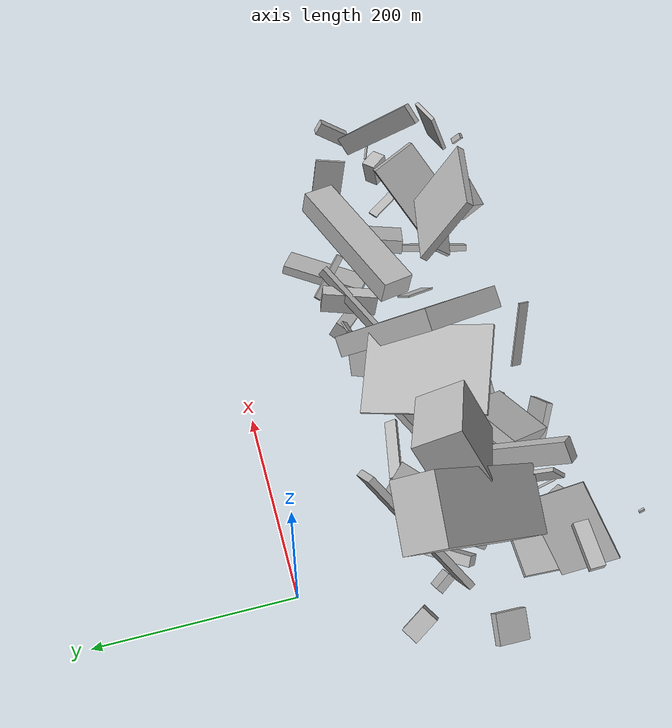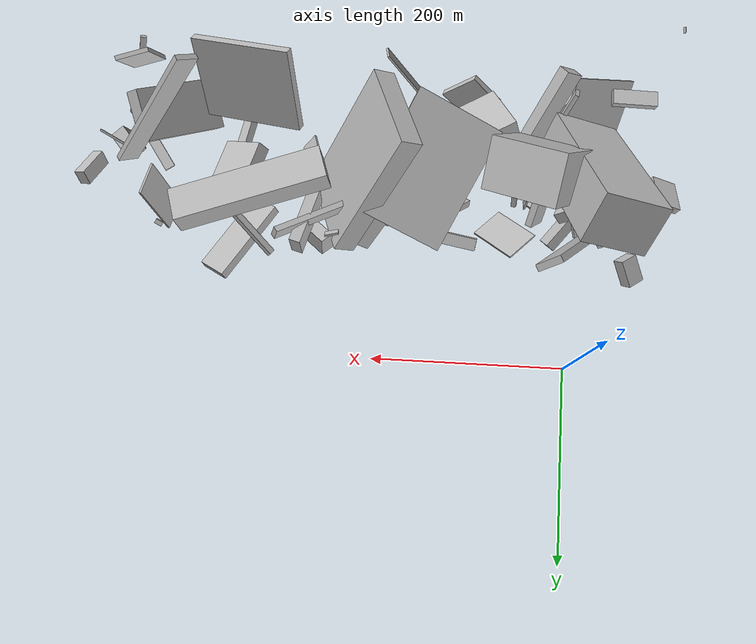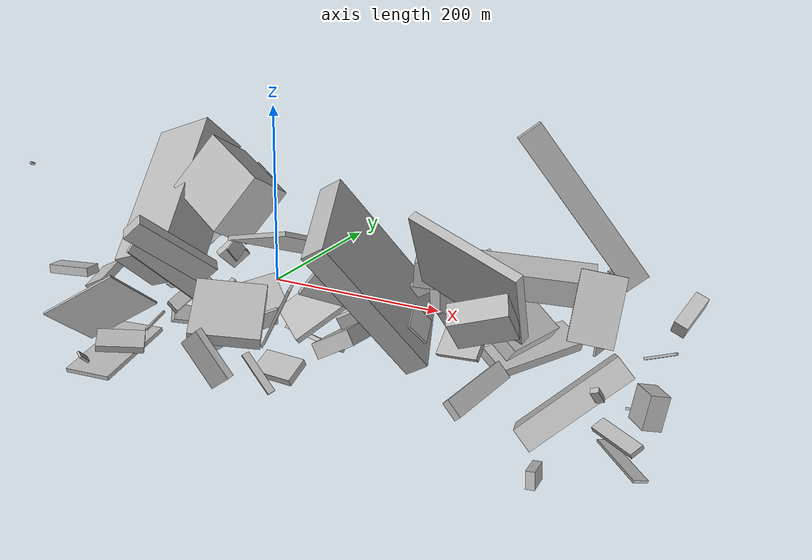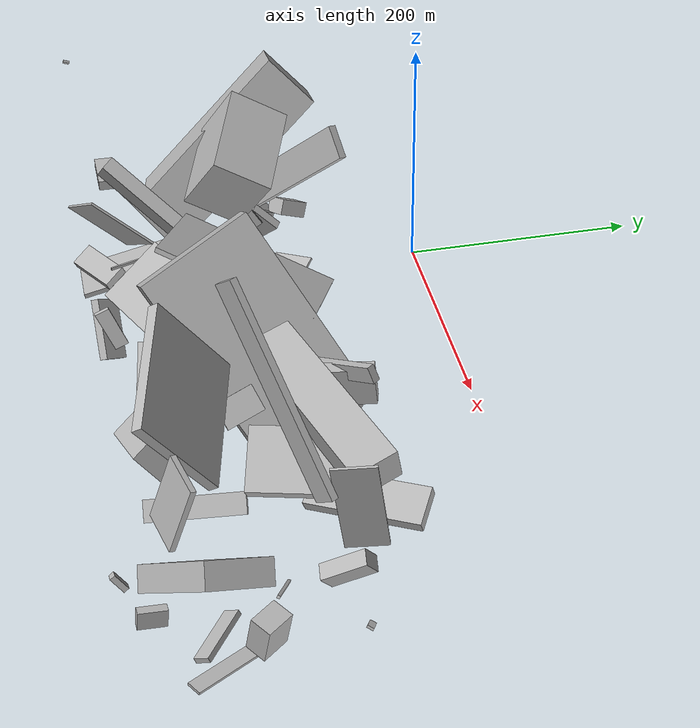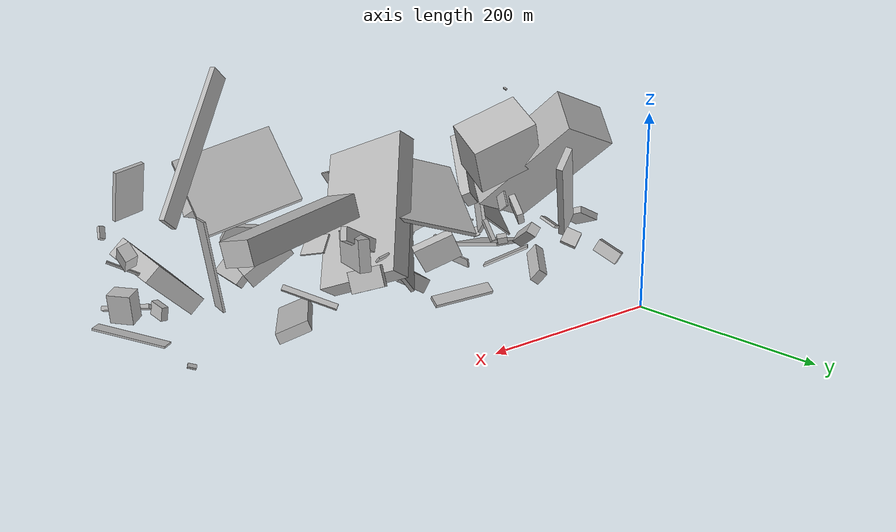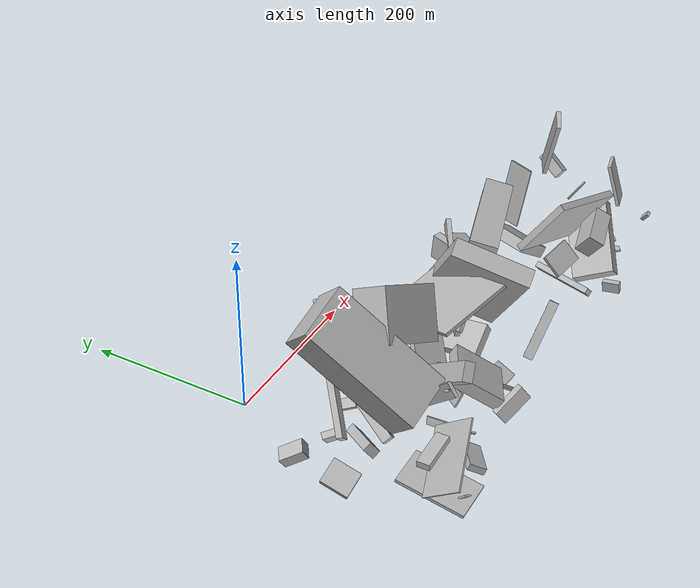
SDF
<sdf version="1.6">
 <world name="default">
  <model name="building_9">
   <static>0</static>
   <pose>405.140047572476 -216.71154803683282 47.58208503096767 1.086932046682388 -0.6461641095841756 0.5884371205439956</pose>
   <link name="link">
    <gravity>0</gravity>
    <pose>0 0 25.5 0 0 0</pose>
    <collision name="collision"><geometry><box><size>91 19 51</size></box></geometry></collision>
    <visual name="visual">
     <cast_shadows>0</cast_shadows>
     <geometry><box><size>91 19 51</size></box></geometry>
     <material>
      <script>
       <uri>model://HANNAS_wall/materials/scripts</uri>
       <uri>model://HANNAS_wall/materials/textures</uri>
       <name>vrc/HANNAS_wall</name>
      </script>
     </material>
    </visual>
   </link>
  </model>
  <model name="building_13">
   <static>0</static>
   <pose>122.49739351463079 -171.38835465769185 32.34084828139092 0.8966993625877948 -0.418414041197858 2.5714429312567724</pose>
   <link name="link">
    <gravity>0</gravity>
    <pose>0 0 33.5 0 0 0</pose>
    <collision name="collision"><geometry><box><size>43 7 67</size></box></geometry></collision>
    <visual name="visual">
     <cast_shadows>0</cast_shadows>
     <geometry><box><size>43 7 67</size></box></geometry>
     <material>
      <script>
       <uri>model://HANNAS_wall/materials/scripts</uri>
       <uri>model://HANNAS_wall/materials/textures</uri>
       <name>vrc/HANNAS_wall</name>
      </script>
     </material>
    </visual>
   </link>
  </model>
  <model name="building_18">
   <static>0</static>
   <pose>229.438580512625 -218.84862247146435 82.03777146807872 0.9580243260923124 -0.8941822869639865 -2.295074446855041</pose>
   <link name="link">
    <gravity>0</gravity>
    <pose>0 0 47.0 0 0 0</pose>
    <collision name="collision"><geometry><box><size>150 22 94</size></box></geometry></collision>
    <visual name="visual">
     <cast_shadows>0</cast_shadows>
     <geometry><box><size>150 22 94</size></box></geometry>
     <material>
      <script>
       <uri>model://HANNAS_wall/materials/scripts</uri>
       <uri>model://HANNAS_wall/materials/textures</uri>
       <name>vrc/HANNAS_wall</name>
      </script>
     </material>
    </visual>
   </link>
  </model>
  <model name="building_19">
   <static>0</static>
   <pose>254.51070104410957 -120.72596495199232 52.181886951948115 -1.2802996727481015 0.2540777095912527 -0.7292470649710532</pose>
   <link name="link">
    <gravity>0</gravity>
    <pose>0 0 7.0 0 0 0</pose>
    <collision name="collision"><geometry><box><size>32 21 14</size></box></geometry></collision>
    <visual name="visual">
     <cast_shadows>0</cast_shadows>
     <geometry><box><size>32 21 14</size></box></geometry>
     <material>
      <script>
       <uri>model://HANNAS_wall/materials/scripts</uri>
       <uri>model://HANNAS_wall/materials/textures</uri>
       <name>vrc/HANNAS_wall</name>
      </script>
     </material>
    </visual>
   </link>
  </model>
  <model name="building_20">
   <static>0</static>
   <pose>191.8151705351303 -170.61002182184933 29.73649728805219 0.11571769139053964 0.5264253283822369 -3.0872620706388156</pose>
   <link name="link">
    <gravity>0</gravity>
    <pose>0 0 7.5 0 0 0</pose>
    <collision name="collision"><geometry><box><size>40 67 15</size></box></geometry></collision>
    <visual name="visual">
     <cast_shadows>0</cast_shadows>
     <geometry><box><size>40 67 15</size></box></geometry>
     <material>
      <script>
       <uri>model://HANNAS_wall/materials/scripts</uri>
       <uri>model://HANNAS_wall/materials/textures</uri>
       <name>vrc/HANNAS_wall</name>
      </script>
     </material>
    </visual>
   </link>
  </model>
  <model name="building_22">
   <static>0</static>
   <pose>49.111405487211826 -192.21956928621262 51.790322311394625 -0.8006094675814664 0.13518739628299245 2.722499859633222</pose>
   <link name="link">
    <gravity>0</gravity>
    <pose>0 0 48.5 0 0 0</pose>
    <collision name="collision"><geometry><box><size>4 18 97</size></box></geometry></collision>
    <visual name="visual">
     <cast_shadows>0</cast_shadows>
     <geometry><box><size>4 18 97</size></box></geometry>
     <material>
      <script>
       <uri>model://HANNAS_wall/materials/scripts</uri>
       <uri>model://HANNAS_wall/materials/textures</uri>
       <name>vrc/HANNAS_wall</name>
      </script>
     </material>
    </visual>
   </link>
  </model>
  <model name="building_23">
   <static>0</static>
   <pose>58.527197375153605 -203.75554127191376 84.30157970261227 0.5784418254748094 -0.742789438508489 0.26980000603774135</pose>
   <link name="link">
    <gravity>0</gravity>
    <pose>0 0 44.5 0 0 0</pose>
    <collision name="collision"><geometry><box><size>22 12 89</size></box></geometry></collision>
    <visual name="visual">
     <cast_shadows>0</cast_shadows>
     <geometry><box><size>22 12 89</size></box></geometry>
     <material>
      <script>
       <uri>model://HANNAS_wall/materials/scripts</uri>
       <uri>model://HANNAS_wall/materials/textures</uri>
       <name>vrc/HANNAS_wall</name>
      </script>
     </material>
    </visual>
   </link>
  </model>
  <model name="building_25">
   <static>0</static>
   <pose>322.5534758752127 -145.5366315214743 120.0016162553365 3.070965974423638 0.2050050162856617 -1.262281968577617</pose>
   <link name="link">
    <gravity>0</gravity>
    <pose>0 0 12.0 0 0 0</pose>
    <collision name="collision"><geometry><box><size>34 150 24</size></box></geometry></collision>
    <visual name="visual">
     <cast_shadows>0</cast_shadows>
     <geometry><box><size>34 150 24</size></box></geometry>
     <material>
      <script>
       <uri>model://HANNAS_wall/materials/scripts</uri>
       <uri>model://HANNAS_wall/materials/textures</uri>
       <name>vrc/HANNAS_wall</name>
      </script>
     </material>
    </visual>
   </link>
  </model>
  <model name="building_26">
   <static>0</static>
   <pose>351.94292441095604 -122.14357779134224 28.229616938424634 -0.21927653988342435 1.185726907733517 2.3750195157393765</pose>
   <link name="link">
    <gravity>0</gravity>
    <pose>0 0 15.0 0 0 0</pose>
    <collision name="collision"><geometry><box><size>10 89 30</size></box></geometry></collision>
    <visual name="visual">
     <cast_shadows>0</cast_shadows>
     <geometry><box><size>10 89 30</size></box></geometry>
     <material>
      <script>
       <uri>model://HANNAS_wall/materials/scripts</uri>
       <uri>model://HANNAS_wall/materials/textures</uri>
       <name>vrc/HANNAS_wall</name>
      </script>
     </material>
    </visual>
   </link>
  </model>
  <model name="building_30">
   <static>0</static>
   <pose>-79.44145912278564 -179.95170900106856 52.76098043010613 -2.058156387643517 -0.3395776187814273 1.651887740732104</pose>
   <link name="link">
    <gravity>0</gravity>
    <pose>0 0 14.5 0 0 0</pose>
    <collision name="collision"><geometry><box><size>33 8 29</size></box></geometry></collision>
    <visual name="visual">
     <cast_shadows>0</cast_shadows>
     <geometry><box><size>33 8 29</size></box></geometry>
     <material>
      <script>
       <uri>model://HANNAS_wall/materials/scripts</uri>
       <uri>model://HANNAS_wall/materials/textures</uri>
       <name>vrc/HANNAS_wall</name>
      </script>
     </material>
    </visual>
   </link>
  </model>
  <model name="building_31">
   <static>0</static>
   <pose>478.80490878973114 -157.00881452525365 105.79570847653156 -1.1338721874667617 -0.5250009167957803 1.238414022761042</pose>
   <link name="link">
    <gravity>0</gravity>
    <pose>0 0 5.5 0 0 0</pose>
    <collision name="collision"><geometry><box><size>33 14 11</size></box></geometry></collision>
    <visual name="visual">
     <cast_shadows>0</cast_shadows>
     <geometry><box><size>33 14 11</size></box></geometry>
     <material>
      <script>
       <uri>model://HANNAS_wall/materials/scripts</uri>
       <uri>model://HANNAS_wall/materials/textures</uri>
       <name>vrc/HANNAS_wall</name>
      </script>
     </material>
    </visual>
   </link>
  </model>
  <model name="building_32">
   <static>0</static>
   <pose>1.5251582114932403 -162.8800857314534 38.95548740673219 0.8877306894256985 -0.4964116806762439 1.1968607025240063</pose>
   <link name="link">
    <gravity>0</gravity>
    <pose>0 0 6.0 0 0 0</pose>
    <collision name="collision"><geometry><box><size>47 13 12</size></box></geometry></collision>
    <visual name="visual">
     <cast_shadows>0</cast_shadows>
     <geometry><box><size>47 13 12</size></box></geometry>
     <material>
      <script>
       <uri>model://HANNAS_wall/materials/scripts</uri>
       <uri>model://HANNAS_wall/materials/textures</uri>
       <name>vrc/HANNAS_wall</name>
      </script>
     </material>
    </visual>
   </link>
  </model>
  <model name="building_33">
   <static>0</static>
   <pose>333.6375676161288 -235.89864007672412 44.265550735526936 0.8222616204111167 -0.0848726247882162 1.3858291198460326</pose>
   <link name="link">
    <gravity>0</gravity>
    <pose>0 0 3.5 0 0 0</pose>
    <collision name="collision"><geometry><box><size>72 16 7</size></box></geometry></collision>
    <visual name="visual">
     <cast_shadows>0</cast_shadows>
     <geometry><box><size>72 16 7</size></box></geometry>
     <material>
      <script>
       <uri>model://HANNAS_wall/materials/scripts</uri>
       <uri>model://HANNAS_wall/materials/textures</uri>
       <name>vrc/HANNAS_wall</name>
      </script>
     </material>
    </visual>
   </link>
  </model>
  <model name="building_34">
   <static>0</static>
   <pose>323.2632670175917 -235.57052752446924 83.41640910326358 0.7910552904471239 -0.17024961377150963 -0.226705672656848</pose>
   <link name="link">
    <gravity>0</gravity>
    <pose>0 0 2.0 0 0 0</pose>
    <collision name="collision"><geometry><box><size>38 28 4</size></box></geometry></collision>
    <visual name="visual">
     <cast_shadows>0</cast_shadows>
     <geometry><box><size>38 28 4</size></box></geometry>
     <material>
      <script>
       <uri>model://HANNAS_wall/materials/scripts</uri>
       <uri>model://HANNAS_wall/materials/textures</uri>
       <name>vrc/HANNAS_wall</name>
      </script>
     </material>
    </visual>
   </link>
  </model>
  <model name="building_36">
   <static>0</static>
   <pose>-36.95932191100841 -157.59381388682877 120.89456675348643 1.1072825740776007 -0.7057217410574697 1.8087956194452175</pose>
   <link name="link">
    <gravity>0</gravity>
    <pose>0 0 33.0 0 0 0</pose>
    <collision name="collision"><geometry><box><size>150 50 66</size></box></geometry></collision>
    <visual name="visual">
     <cast_shadows>0</cast_shadows>
     <geometry><box><size>150 50 66</size></box></geometry>
     <material>
      <script>
       <uri>model://HANNAS_wall/materials/scripts</uri>
       <uri>model://HANNAS_wall/materials/textures</uri>
       <name>vrc/HANNAS_wall</name>
      </script>
     </material>
    </visual>
   </link>
  </model>
  <model name="building_41">
   <static>0</static>
   <pose>0.4950974912496222 -116.40774191293919 99.51234034959154 -1.8950682909638612 -0.718082350823617 0.7394031155737554</pose>
   <link name="link">
    <gravity>0</gravity>
    <pose>0 0 3.5 0 0 0</pose>
    <collision name="collision"><geometry><box><size>150 28 7</size></box></geometry></collision>
    <visual name="visual">
     <cast_shadows>0</cast_shadows>
     <geometry><box><size>150 28 7</size></box></geometry>
     <material>
      <script>
       <uri>model://HANNAS_wall/materials/scripts</uri>
       <uri>model://HANNAS_wall/materials/textures</uri>
       <name>vrc/HANNAS_wall</name>
      </script>
     </material>
    </visual>
   </link>
  </model>
  <model name="building_43">
   <static>0</static>
   <pose>268.15266155838833 -123.83561956874752 97.8906930115783 -3.121774283335875 -0.08569690282155046 1.2927585238035717</pose>
   <link name="link">
    <gravity>0</gravity>
    <pose>0 0 15.5 0 0 0</pose>
    <collision name="collision"><geometry><box><size>57 11 31</size></box></geometry></collision>
    <visual name="visual">
     <cast_shadows>0</cast_shadows>
     <geometry><box><size>57 11 31</size></box></geometry>
     <material>
      <script>
       <uri>model://HANNAS_wall/materials/scripts</uri>
       <uri>model://HANNAS_wall/materials/textures</uri>
       <name>vrc/HANNAS_wall</name>
      </script>
     </material>
    </visual>
   </link>
  </model>
  <model name="building_44">
   <static>0</static>
   <pose>358.9105647196109 -174.12950603644848 65.70686040776827 -0.06546595034180763 0.9545399532808901 2.7904474787112816</pose>
   <link name="link">
    <gravity>0</gravity>
    <pose>0 0 23.5 0 0 0</pose>
    <collision name="collision"><geometry><box><size>14 60 47</size></box></geometry></collision>
    <visual name="visual">
     <cast_shadows>0</cast_shadows>
     <geometry><box><size>14 60 47</size></box></geometry>
     <material>
      <script>
       <uri>model://HANNAS_wall/materials/scripts</uri>
       <uri>model://HANNAS_wall/materials/textures</uri>
       <name>vrc/HANNAS_wall</name>
      </script>
     </material>
    </visual>
   </link>
  </model>
  <model name="building_53">
   <static>0</static>
   <pose>153.9608840092988 -238.91108346876294 27.48541177915844 3.1279749017766347 -0.4463977536747255 1.4937989452211577</pose>
   <link name="link">
    <gravity>0</gravity>
    <pose>0 0 3.5 0 0 0</pose>
    <collision name="collision"><geometry><box><size>25 40 7</size></box></geometry></collision>
    <visual name="visual">
     <cast_shadows>0</cast_shadows>
     <geometry><box><size>25 40 7</size></box></geometry>
     <material>
      <script>
       <uri>model://HANNAS_wall/materials/scripts</uri>
       <uri>model://HANNAS_wall/materials/textures</uri>
       <name>vrc/HANNAS_wall</name>
      </script>
     </material>
    </visual>
   </link>
  </model>
  <model name="building_59">
   <static>0</static>
   <pose>326.8442934060367 -233.9744586015293 139.24113857261392 -2.125221472428371 -0.272067706548197 2.904727787371769</pose>
   <link name="link">
    <gravity>0</gravity>
    <pose>0 0 4.0 0 0 0</pose>
    <collision name="collision"><geometry><box><size>100 81 8</size></box></geometry></collision>
    <visual name="visual">
     <cast_shadows>0</cast_shadows>
     <geometry><box><size>100 81 8</size></box></geometry>
     <material>
      <script>
       <uri>model://HANNAS_wall/materials/scripts</uri>
       <uri>model://HANNAS_wall/materials/textures</uri>
       <name>vrc/HANNAS_wall</name>
      </script>
     </material>
    </visual>
   </link>
  </model>
  <model name="building_60">
   <static>0</static>
   <pose>442.1918934383265 -241.28282378150598 32.33783171276214 -1.114113804636925 0.023849881044654273 -0.6144720164215509</pose>
   <link name="link">
    <gravity>0</gravity>
    <pose>0 0 6.0 0 0 0</pose>
    <collision name="collision"><geometry><box><size>43 4 12</size></box></geometry></collision>
    <visual name="visual">
     <cast_shadows>0</cast_shadows>
     <geometry><box><size>43 4 12</size></box></geometry>
     <material>
      <script>
       <uri>model://HANNAS_wall/materials/scripts</uri>
       <uri>model://HANNAS_wall/materials/textures</uri>
       <name>vrc/HANNAS_wall</name>
      </script>
     </material>
    </visual>
   </link>
  </model>
  <model name="building_62">
   <static>0</static>
   <pose>30.60887516118474 -266.1355294517871 33.17631102876207 1.3526272229745004 -1.0888505419246655 -0.7452786127846377</pose>
   <link name="link">
    <gravity>0</gravity>
    <pose>0 0 21.0 0 0 0</pose>
    <collision name="collision"><geometry><box><size>8 20 42</size></box></geometry></collision>
    <visual name="visual">
     <cast_shadows>0</cast_shadows>
     <geometry><box><size>8 20 42</size></box></geometry>
     <material>
      <script>
       <uri>model://HANNAS_wall/materials/scripts</uri>
       <uri>model://HANNAS_wall/materials/textures</uri>
       <name>vrc/HANNAS_wall</name>
      </script>
     </material>
    </visual>
   </link>
  </model>
  <model name="building_67">
   <static>0</static>
   <pose>-38.31803160043574 -133.7258844320416 45.816137817749606 -2.7298283851522007 0.5532530981857477 -2.3506266599836905</pose>
   <link name="link">
    <gravity>0</gravity>
    <pose>0 0 9.0 0 0 0</pose>
    <collision name="collision"><geometry><box><size>8 18 18</size></box></geometry></collision>
    <visual name="visual">
     <cast_shadows>0</cast_shadows>
     <geometry><box><size>8 18 18</size></box></geometry>
     <material>
      <script>
       <uri>model://HANNAS_wall/materials/scripts</uri>
       <uri>model://HANNAS_wall/materials/textures</uri>
       <name>vrc/HANNAS_wall</name>
      </script>
     </material>
    </visual>
   </link>
  </model>
  <model name="building_78">
   <static>0</static>
   <pose>104.48315912678805 -240.04544770587347 70.53528578414026 2.577899533788324 -0.10049580547644203 -2.644723129878099</pose>
   <link name="link">
    <gravity>0</gravity>
    <pose>0 0 7.5 0 0 0</pose>
    <collision name="collision"><geometry><box><size>63 59 15</size></box></geometry></collision>
    <visual name="visual">
     <cast_shadows>0</cast_shadows>
     <geometry><box><size>63 59 15</size></box></geometry>
     <material>
      <script>
       <uri>model://HANNAS_wall/materials/scripts</uri>
       <uri>model://HANNAS_wall/materials/textures</uri>
       <name>vrc/HANNAS_wall</name>
      </script>
     </material>
    </visual>
   </link>
  </model>
  <model name="building_80">
   <static>0</static>
   <pose>188.6251510998845 -151.22347548888493 70.1449068526031 -2.104908236356246 -0.4094043807921961 -2.206084380960883</pose>
   <link name="link">
    <gravity>0</gravity>
    <pose>0 0 2.0 0 0 0</pose>
    <collision name="collision"><geometry><box><size>112 36 4</size></box></geometry></collision>
    <visual name="visual">
     <cast_shadows>0</cast_shadows>
     <geometry><box><size>112 36 4</size></box></geometry>
     <material>
      <script>
       <uri>model://HANNAS_wall/materials/scripts</uri>
       <uri>model://HANNAS_wall/materials/textures</uri>
       <name>vrc/HANNAS_wall</name>
      </script>
     </material>
    </visual>
   </link>
  </model>
  <model name="building_81">
   <static>0</static>
   <pose>433.7416035498889 -161.42192348548258 127.86523571129493 -0.6465346053487506 -0.01207361463387434 2.0825536475227118</pose>
   <link name="link">
    <gravity>0</gravity>
    <pose>0 0 75.0 0 0 0</pose>
    <collision name="collision"><geometry><box><size>5 20 150</size></box></geometry></collision>
    <visual name="visual">
     <cast_shadows>0</cast_shadows>
     <geometry><box><size>5 20 150</size></box></geometry>
     <material>
      <script>
       <uri>model://HANNAS_wall/materials/scripts</uri>
       <uri>model://HANNAS_wall/materials/textures</uri>
       <name>vrc/HANNAS_wall</name>
      </script>
     </material>
    </visual>
   </link>
  </model>
  <model name="building_82">
   <static>0</static>
   <pose>150.83858059113365 -167.8834268974018 115.12051514967449 2.7845992314152896 -0.28348897424776026 -0.3658986585023967</pose>
   <link name="link">
    <gravity>0</gravity>
    <pose>0 0 2.0 0 0 0</pose>
    <collision name="collision"><geometry><box><size>89 128 4</size></box></geometry></collision>
    <visual name="visual">
     <cast_shadows>0</cast_shadows>
     <geometry><box><size>89 128 4</size></box></geometry>
     <material>
      <script>
       <uri>model://HANNAS_wall/materials/scripts</uri>
       <uri>model://HANNAS_wall/materials/textures</uri>
       <name>vrc/HANNAS_wall</name>
      </script>
     </material>
    </visual>
   </link>
  </model>
  <model name="building_85">
   <static>0</static>
   <pose>8.592238260459169 -253.83463118750382 12.141866542694721 -1.6246850398493446 -0.20605099156966317 1.5967542567425743</pose>
   <link name="link">
    <gravity>0</gravity>
    <pose>0 0 24.5 0 0 0</pose>
    <collision name="collision"><geometry><box><size>82 4 49</size></box></geometry></collision>
    <visual name="visual">
     <cast_shadows>0</cast_shadows>
     <geometry><box><size>82 4 49</size></box></geometry>
     <material>
      <script>
       <uri>model://HANNAS_wall/materials/scripts</uri>
       <uri>model://HANNAS_wall/materials/textures</uri>
       <name>vrc/HANNAS_wall</name>
      </script>
     </material>
    </visual>
   </link>
  </model>
  <model name="building_91">
   <static>0</static>
   <pose>412.5745263141555 -260.082548913086 141.13654479835284 -1.9981030097758983 1.2451786148604922 -1.7120694944414314</pose>
   <link name="link">
    <gravity>0</gravity>
    <pose>0 0 16.0 0 0 0</pose>
    <collision name="collision"><geometry><box><size>51 4 32</size></box></geometry></collision>
    <visual name="visual">
     <cast_shadows>0</cast_shadows>
     <geometry><box><size>51 4 32</size></box></geometry>
     <material>
      <script>
       <uri>model://HANNAS_wall/materials/scripts</uri>
       <uri>model://HANNAS_wall/materials/textures</uri>
       <name>vrc/HANNAS_wall</name>
      </script>
     </material>
    </visual>
   </link>
  </model>
  <model name="building_93">
   <static>0</static>
   <pose>179.08211826554583 -175.39773755409965 47.57108615916608 1.1518239167839304 -0.09150225692058675 2.183556934285727</pose>
   <link name="link">
    <gravity>0</gravity>
    <pose>0 0 75.0 0 0 0</pose>
    <collision name="collision"><geometry><box><size>6 13 150</size></box></geometry></collision>
    <visual name="visual">
     <cast_shadows>0</cast_shadows>
     <geometry><box><size>6 13 150</size></box></geometry>
     <material>
      <script>
       <uri>model://HANNAS_wall/materials/scripts</uri>
       <uri>model://HANNAS_wall/materials/textures</uri>
       <name>vrc/HANNAS_wall</name>
      </script>
     </material>
    </visual>
   </link>
  </model>
  <model name="building_96">
   <static>0</static>
   <pose>95.19971853612752 -126.18695414749868 8.55542229307168 1.714881868238577 -1.0137013043257868 1.2457969228669161</pose>
   <link name="link">
    <gravity>0</gravity>
    <pose>0 0 33.5 0 0 0</pose>
    <collision name="collision"><geometry><box><size>4 13 67</size></box></geometry></collision>
    <visual name="visual">
     <cast_shadows>0</cast_shadows>
     <geometry><box><size>4 13 67</size></box></geometry>
     <material>
      <script>
       <uri>model://HANNAS_wall/materials/scripts</uri>
       <uri>model://HANNAS_wall/materials/textures</uri>
       <name>vrc/HANNAS_wall</name>
      </script>
     </material>
    </visual>
   </link>
  </model>
  <model name="building_103">
   <static>0</static>
   <pose>161.63816209286082 -270.2445676543851 61.78284030276508 0.47726563384834625 -0.29542480327072224 1.7441588787083602</pose>
   <link name="link">
    <gravity>0</gravity>
    <pose>0 0 35.0 0 0 0</pose>
    <collision name="collision"><geometry><box><size>11 2 70</size></box></geometry></collision>
    <visual name="visual">
     <cast_shadows>0</cast_shadows>
     <geometry><box><size>11 2 70</size></box></geometry>
     <material>
      <script>
       <uri>model://HANNAS_wall/materials/scripts</uri>
       <uri>model://HANNAS_wall/materials/textures</uri>
       <name>vrc/HANNAS_wall</name>
      </script>
     </material>
    </visual>
   </link>
  </model>
  <model name="building_104">
   <static>0</static>
   <pose>-19.330640977101584 -265.22918941381994 54.59741765244226 -0.8326731657031633 -0.5427006873425855 0.2897678663801735</pose>
   <link name="link">
    <gravity>0</gravity>
    <pose>0 0 1.0 0 0 0</pose>
    <collision name="collision"><geometry><box><size>80 62 2</size></box></geometry></collision>
    <visual name="visual">
     <cast_shadows>0</cast_shadows>
     <geometry><box><size>80 62 2</size></box></geometry>
     <material>
      <script>
       <uri>model://HANNAS_wall/materials/scripts</uri>
       <uri>model://HANNAS_wall/materials/textures</uri>
       <name>vrc/HANNAS_wall</name>
      </script>
     </material>
    </visual>
   </link>
  </model>
  <model name="building_106">
   <static>0</static>
   <pose>36.62778769113135 -147.99580296230184 75.5472601254855 -0.46652450584033955 -0.7443509097865976 -1.8074363605083577</pose>
   <link name="link">
    <gravity>0</gravity>
    <pose>0 0 10.5 0 0 0</pose>
    <collision name="collision"><geometry><box><size>26 7 21</size></box></geometry></collision>
    <visual name="visual">
     <cast_shadows>0</cast_shadows>
     <geometry><box><size>26 7 21</size></box></geometry>
     <material>
      <script>
       <uri>model://HANNAS_wall/materials/scripts</uri>
       <uri>model://HANNAS_wall/materials/textures</uri>
       <name>vrc/HANNAS_wall</name>
      </script>
     </material>
    </visual>
   </link>
  </model>
  <model name="building_108">
   <static>0</static>
   <pose>144.11370559496126 -259.60717451771984 24.157178549263538 -1.221266736709574 -0.8017297066459572 -0.6814514426151699</pose>
   <link name="link">
    <gravity>0</gravity>
    <pose>0 0 3.5 0 0 0</pose>
    <collision name="collision"><geometry><box><size>2 41 7</size></box></geometry></collision>
    <visual name="visual">
     <cast_shadows>0</cast_shadows>
     <geometry><box><size>2 41 7</size></box></geometry>
     <material>
      <script>
       <uri>model://HANNAS_wall/materials/scripts</uri>
       <uri>model://HANNAS_wall/materials/textures</uri>
       <name>vrc/HANNAS_wall</name>
      </script>
     </material>
    </visual>
   </link>
  </model>
  <model name="building_109">
   <static>0</static>
   <pose>322.12195390357465 -115.19515929437877 52.550468753377196 2.7485195666217552 -0.5116365908291478 1.0100068921340273</pose>
   <link name="link">
    <gravity>0</gravity>
    <pose>0 0 2.5 0 0 0</pose>
    <collision name="collision"><geometry><box><size>7 53 5</size></box></geometry></collision>
    <visual name="visual">
     <cast_shadows>0</cast_shadows>
     <geometry><box><size>7 53 5</size></box></geometry>
     <material>
      <script>
       <uri>model://HANNAS_wall/materials/scripts</uri>
       <uri>model://HANNAS_wall/materials/textures</uri>
       <name>vrc/HANNAS_wall</name>
      </script>
     </material>
    </visual>
   </link>
  </model>
  <model name="building_111">
   <static>0</static>
   <pose>107.14241236615119 -280.64504325897025 37.872531566464104 1.1389493202476988 -0.8882117728860075 -3.1038448505791787</pose>
   <link name="link">
    <gravity>0</gravity>
    <pose>0 0 3.0 0 0 0</pose>
    <collision name="collision"><geometry><box><size>48 40 6</size></box></geometry></collision>
    <visual name="visual">
     <cast_shadows>0</cast_shadows>
     <geometry><box><size>48 40 6</size></box></geometry>
     <material>
      <script>
       <uri>model://HANNAS_wall/materials/scripts</uri>
       <uri>model://HANNAS_wall/materials/textures</uri>
       <name>vrc/HANNAS_wall</name>
      </script>
     </material>
    </visual>
   </link>
  </model>
  <model name="building_116">
   <static>0</static>
   <pose>68.81748569763619 -131.1734640610373 38.92576663658336 2.919154931535923 -0.4151744759986214 2.456326842820935</pose>
   <link name="link">
    <gravity>0</gravity>
    <pose>0 0 1.0 0 0 0</pose>
    <collision name="collision"><geometry><box><size>50 37 2</size></box></geometry></collision>
    <visual name="visual">
     <cast_shadows>0</cast_shadows>
     <geometry><box><size>50 37 2</size></box></geometry>
     <material>
      <script>
       <uri>model://HANNAS_wall/materials/scripts</uri>
       <uri>model://HANNAS_wall/materials/textures</uri>
       <name>vrc/HANNAS_wall</name>
      </script>
     </material>
    </visual>
   </link>
  </model>
  <model name="building_118">
   <static>0</static>
   <pose>0.38044774175293883 -146.55639021615374 16.997342107222345 -2.501634117535964 -0.2750840123597744 -2.2467017650405188</pose>
   <link name="link">
    <gravity>0</gravity>
    <pose>0 0 8.0 0 0 0</pose>
    <collision name="collision"><geometry><box><size>54 11 16</size></box></geometry></collision>
    <visual name="visual">
     <cast_shadows>0</cast_shadows>
     <geometry><box><size>54 11 16</size></box></geometry>
     <material>
      <script>
       <uri>model://HANNAS_wall/materials/scripts</uri>
       <uri>model://HANNAS_wall/materials/textures</uri>
       <name>vrc/HANNAS_wall</name>
      </script>
     </material>
    </visual>
   </link>
  </model>
  <model name="building_119">
   <static>0</static>
   <pose>434.0491236982203 -131.14430312334434 6.027284251258732 1.1968315350311436 -0.3257594012654719 -0.4431611642385575</pose>
   <link name="link">
    <gravity>0</gravity>
    <pose>0 0 2.5 0 0 0</pose>
    <collision name="collision"><geometry><box><size>8 2 5</size></box></geometry></collision>
    <visual name="visual">
     <cast_shadows>0</cast_shadows>
     <geometry><box><size>8 2 5</size></box></geometry>
     <material>
      <script>
       <uri>model://HANNAS_wall/materials/scripts</uri>
       <uri>model://HANNAS_wall/materials/textures</uri>
       <name>vrc/HANNAS_wall</name>
      </script>
     </material>
    </visual>
   </link>
  </model>
  <model name="building_122">
   <static>0</static>
   <pose>243.13651019997826 -114.142657783316 73.70517760557358 2.9625657474267975 0.7874881122656114 -1.5009068060476831</pose>
   <link name="link">
    <gravity>0</gravity>
    <pose>0 0 1.0 0 0 0</pose>
    <collision name="collision"><geometry><box><size>7 14 2</size></box></geometry></collision>
    <visual name="visual">
     <cast_shadows>0</cast_shadows>
     <geometry><box><size>7 14 2</size></box></geometry>
     <material>
      <script>
       <uri>model://HANNAS_wall/materials/scripts</uri>
       <uri>model://HANNAS_wall/materials/textures</uri>
       <name>vrc/HANNAS_wall</name>
      </script>
     </material>
    </visual>
   </link>
  </model>
  <model name="building_129">
   <static>0</static>
   <pose>102.8859654226928 -202.42441828206805 39.12053597661148 1.2086466184418732 0.15828277778702027 -2.1344129900023012</pose>
   <link name="link">
    <gravity>0</gravity>
    <pose>0 0 1.5 0 0 0</pose>
    <collision name="collision"><geometry><box><size>53 19 3</size></box></geometry></collision>
    <visual name="visual">
     <cast_shadows>0</cast_shadows>
     <geometry><box><size>53 19 3</size></box></geometry>
     <material>
      <script>
       <uri>model://HANNAS_wall/materials/scripts</uri>
       <uri>model://HANNAS_wall/materials/textures</uri>
       <name>vrc/HANNAS_wall</name>
      </script>
     </material>
    </visual>
   </link>
  </model>
  <model name="building_134">
   <static>0</static>
   <pose>53.12089786176756 -160.28606980042008 86.58869392891141 0.18612519946104733 -0.9537420940461044 -1.9350897070828232</pose>
   <link name="link">
    <gravity>0</gravity>
    <pose>0 0 8.0 0 0 0</pose>
    <collision name="collision"><geometry><box><size>17 2 16</size></box></geometry></collision>
    <visual name="visual">
     <cast_shadows>0</cast_shadows>
     <geometry><box><size>17 2 16</size></box></geometry>
     <material>
      <script>
       <uri>model://HANNAS_wall/materials/scripts</uri>
       <uri>model://HANNAS_wall/materials/textures</uri>
       <name>vrc/HANNAS_wall</name>
      </script>
     </material>
    </visual>
   </link>
  </model>
  <model name="building_136">
   <static>0</static>
   <pose>400.5942686500361 -275.8614084112702 10.915403850594332 1.6469729830286375 -0.1193104962275937 -1.5075118999023323</pose>
   <link name="link">
    <gravity>0</gravity>
    <pose>0 0 3.5 0 0 0</pose>
    <collision name="collision"><geometry><box><size>21 14 7</size></box></geometry></collision>
    <visual name="visual">
     <cast_shadows>0</cast_shadows>
     <geometry><box><size>21 14 7</size></box></geometry>
     <material>
      <script>
       <uri>model://HANNAS_wall/materials/scripts</uri>
       <uri>model://HANNAS_wall/materials/textures</uri>
       <name>vrc/HANNAS_wall</name>
      </script>
     </material>
    </visual>
   </link>
  </model>
  <model name="building_137">
   <static>0</static>
   <pose>404.91299455470386 -129.63944570245616 53.91684923488796 0.10706098766686382 0.13482971207200126 -0.22862194593167492</pose>
   <link name="link">
    <gravity>0</gravity>
    <pose>0 0 40.0 0 0 0</pose>
    <collision name="collision"><geometry><box><size>2 31 80</size></box></geometry></collision>
    <visual name="visual">
     <cast_shadows>0</cast_shadows>
     <geometry><box><size>2 31 80</size></box></geometry>
     <material>
      <script>
       <uri>model://HANNAS_wall/materials/scripts</uri>
       <uri>model://HANNAS_wall/materials/textures</uri>
       <name>vrc/HANNAS_wall</name>
      </script>
     </material>
    </visual>
   </link>
  </model>
  <model name="building_138">
   <static>0</static>
   <pose>466.14121360638734 -200.42738363123897 47.0727907612583 0.13964360073393056 1.3778221820610372 -2.3117229646664232</pose>
   <link name="link">
    <gravity>0</gravity>
    <pose>0 0 8.0 0 0 0</pose>
    <collision name="collision"><geometry><box><size>28 22 16</size></box></geometry></collision>
    <visual name="visual">
     <cast_shadows>0</cast_shadows>
     <geometry><box><size>28 22 16</size></box></geometry>
     <material>
      <script>
       <uri>model://HANNAS_wall/materials/scripts</uri>
       <uri>model://HANNAS_wall/materials/textures</uri>
       <name>vrc/HANNAS_wall</name>
      </script>
     </material>
    </visual>
   </link>
  </model>
  <model name="building_140">
   <static>0</static>
   <pose>-22.971146064027934 -283.5530881652165 10.604060996137457 0.7507497758476992 0.31062050604851604 -0.5110948502993492</pose>
   <link name="link">
    <gravity>0</gravity>
    <pose>0 0 6.0 0 0 0</pose>
    <collision name="collision"><geometry><box><size>8 2 12</size></box></geometry></collision>
    <visual name="visual">
     <cast_shadows>0</cast_shadows>
     <geometry><box><size>8 2 12</size></box></geometry>
     <material>
      <script>
       <uri>model://HANNAS_wall/materials/scripts</uri>
       <uri>model://HANNAS_wall/materials/textures</uri>
       <name>vrc/HANNAS_wall</name>
      </script>
     </material>
    </visual>
   </link>
  </model>
  <model name="building_143">
   <static>0</static>
   <pose>57.71549973466078 -140.1114072875653 140.21577706748693 1.0189285978588996 0.39417328469381546 -0.37403199738361553</pose>
   <link name="link">
    <gravity>0</gravity>
    <pose>0 0 24.5 0 0 0</pose>
    <collision name="collision"><geometry><box><size>73 62 49</size></box></geometry></collision>
    <visual name="visual">
     <cast_shadows>0</cast_shadows>
     <geometry><box><size>73 62 49</size></box></geometry>
     <material>
      <script>
       <uri>model://HANNAS_wall/materials/scripts</uri>
       <uri>model://HANNAS_wall/materials/textures</uri>
       <name>vrc/HANNAS_wall</name>
      </script>
     </material>
    </visual>
   </link>
  </model>
  <model name="building_146">
   <static>0</static>
   <pose>-4.173779452796879 -127.71648247628123 57.571135981139506 1.1150691042111012 -0.3022403078641357 0.40127305303311656</pose>
   <link name="link">
    <gravity>0</gravity>
    <pose>0 0 10.0 0 0 0</pose>
    <collision name="collision"><geometry><box><size>14 3 20</size></box></geometry></collision>
    <visual name="visual">
     <cast_shadows>0</cast_shadows>
     <geometry><box><size>14 3 20</size></box></geometry>
     <material>
      <script>
       <uri>model://HANNAS_wall/materials/scripts</uri>
       <uri>model://HANNAS_wall/materials/textures</uri>
       <name>vrc/HANNAS_wall</name>
      </script>
     </material>
    </visual>
   </link>
  </model>
  <model name="building_149">
   <static>0</static>
   <pose>-72.80982396479027 -263.0738510017302 86.00472476735813 0.17802300878716762 -1.48465063273217 2.979373417396705</pose>
   <link name="link">
    <gravity>0</gravity>
    <pose>0 0 22.5 0 0 0</pose>
    <collision name="collision"><geometry><box><size>8 15 45</size></box></geometry></collision>
    <visual name="visual">
     <cast_shadows>0</cast_shadows>
     <geometry><box><size>8 15 45</size></box></geometry>
     <material>
      <script>
       <uri>model://HANNAS_wall/materials/scripts</uri>
       <uri>model://HANNAS_wall/materials/textures</uri>
       <name>vrc/HANNAS_wall</name>
      </script>
     </material>
    </visual>
   </link>
  </model>
  <model name="building_153">
   <static>0</static>
   <pose>326.431226143923 -268.6451846832384 110.01411983522547 -1.0883070550305856 -0.9175974151678477 -1.7342942781886743</pose>
   <link name="link">
    <gravity>0</gravity>
    <pose>0 0 23.0 0 0 0</pose>
    <collision name="collision"><geometry><box><size>30 20 46</size></box></geometry></collision>
    <visual name="visual">
     <cast_shadows>0</cast_shadows>
     <geometry><box><size>30 20 46</size></box></geometry>
     <material>
      <script>
       <uri>model://HANNAS_wall/materials/scripts</uri>
       <uri>model://HANNAS_wall/materials/textures</uri>
       <name>vrc/HANNAS_wall</name>
      </script>
     </material>
    </visual>
   </link>
  </model>
  <model name="building_155">
   <static>0</static>
   <pose>438.9921396111838 -294.20456691222995 92.91872575223232 -1.0519637819308933 -0.8957618702107233 -1.906836854991867</pose>
   <link name="link">
    <gravity>0</gravity>
    <pose>0 0 3.0 0 0 0</pose>
    <collision name="collision"><geometry><box><size>13 4 6</size></box></geometry></collision>
    <visual name="visual">
     <cast_shadows>0</cast_shadows>
     <geometry><box><size>13 4 6</size></box></geometry>
     <material>
      <script>
       <uri>model://HANNAS_wall/materials/scripts</uri>
       <uri>model://HANNAS_wall/materials/textures</uri>
       <name>vrc/HANNAS_wall</name>
      </script>
     </material>
    </visual>
   </link>
  </model>
  <model name="building_158">
   <static>0</static>
   <pose>447.5639777120289 -225.39520802598597 12.225435741383297 3.0716521763567224 -0.12754688149874407 -0.9759272564023626</pose>
   <link name="link">
    <gravity>0</gravity>
    <pose>0 0 1.0 0 0 0</pose>
    <collision name="collision"><geometry><box><size>76 11 2</size></box></geometry></collision>
    <visual name="visual">
     <cast_shadows>0</cast_shadows>
     <geometry><box><size>76 11 2</size></box></geometry>
     <material>
      <script>
       <uri>model://HANNAS_wall/materials/scripts</uri>
       <uri>model://HANNAS_wall/materials/textures</uri>
       <name>vrc/HANNAS_wall</name>
      </script>
     </material>
    </visual>
   </link>
  </model>
  <model name="building_159">
   <static>0</static>
   <pose>62.273649175937166 -164.68384370082288 58.268649834998094 2.8438788839857305 -0.9575283053043384 -1.524728538269498</pose>
   <link name="link">
    <gravity>0</gravity>
    <pose>0 0 2.5 0 0 0</pose>
    <collision name="collision"><geometry><box><size>25 5 5</size></box></geometry></collision>
    <visual name="visual">
     <cast_shadows>0</cast_shadows>
     <geometry><box><size>25 5 5</size></box></geometry>
     <material>
      <script>
       <uri>model://HANNAS_wall/materials/scripts</uri>
       <uri>model://HANNAS_wall/materials/textures</uri>
       <name>vrc/HANNAS_wall</name>
      </script>
     </material>
    </visual>
   </link>
  </model>
  <model name="building_160">
   <static>0</static>
   <pose>-56.5709383188624 -114.6484150839464 31.000741658573276 2.714489769082881 -1.0193109129203872 2.5363554529072987</pose>
   <link name="link">
    <gravity>0</gravity>
    <pose>0 0 14.5 0 0 0</pose>
    <collision name="collision"><geometry><box><size>14 18 29</size></box></geometry></collision>
    <visual name="visual">
     <cast_shadows>0</cast_shadows>
     <geometry><box><size>14 18 29</size></box></geometry>
     <material>
      <script>
       <uri>model://HANNAS_wall/materials/scripts</uri>
       <uri>model://HANNAS_wall/materials/textures</uri>
       <name>vrc/HANNAS_wall</name>
      </script>
     </material>
    </visual>
   </link>
  </model>
  <model name="building_164">
   <static>0</static>
   <pose>32.807047985463896 -251.0189175596836 48.74722490831829 -2.823451572403343 1.381030439346855 0.5647021150488158</pose>
   <link name="link">
    <gravity>0</gravity>
    <pose>0 0 1.0 0 0 0</pose>
    <collision name="collision"><geometry><box><size>2 37 2</size></box></geometry></collision>
    <visual name="visual">
     <cast_shadows>0</cast_shadows>
     <geometry><box><size>2 37 2</size></box></geometry>
     <material>
      <script>
       <uri>model://HANNAS_wall/materials/scripts</uri>
       <uri>model://HANNAS_wall/materials/textures</uri>
       <name>vrc/HANNAS_wall</name>
      </script>
     </material>
    </visual>
   </link>
  </model>
  <model name="building_165">
   <static>0</static>
   <pose>-68.25587007291023 -283.7553265501416 189.67681854370306 -2.108903205879596 -0.3880853328270975 -1.4286098582430866</pose>
   <link name="link">
    <gravity>0</gravity>
    <pose>0 0 1.0 0 0 0</pose>
    <collision name="collision"><geometry><box><size>5 2 2</size></box></geometry></collision>
    <visual name="visual">
     <cast_shadows>0</cast_shadows>
     <geometry><box><size>5 2 2</size></box></geometry>
     <material>
      <script>
       <uri>model://HANNAS_wall/materials/scripts</uri>
       <uri>model://HANNAS_wall/materials/textures</uri>
       <name>vrc/HANNAS_wall</name>
      </script>
     </material>
    </visual>
   </link>
  </model>
  <model name="building_170">
   <static>0</static>
   <pose>64.27012176379642 -215.26168929923617 9.129497101871246 0.22196731098721773 0.051974728318223085 1.5630669264074202</pose>
   <link name="link">
    <gravity>0</gravity>
    <pose>0 0 5.0 0 0 0</pose>
    <collision name="collision"><geometry><box><size>37 2 10</size></box></geometry></collision>
    <visual name="visual">
     <cast_shadows>0</cast_shadows>
     <geometry><box><size>37 2 10</size></box></geometry>
     <material>
      <script>
       <uri>model://HANNAS_wall/materials/scripts</uri>
       <uri>model://HANNAS_wall/materials/textures</uri>
       <name>vrc/HANNAS_wall</name>
      </script>
     </material>
    </visual>
   </link>
  </model>
  <model name="building_173">
   <static>0</static>
   <pose>40.63995304392633 -169.0786774752319 45.72627376707811 -1.7526244386164669 0.16366881327957178 -0.6552108880406712</pose>
   <link name="link">
    <gravity>0</gravity>
    <pose>0 0 5.5 0 0 0</pose>
    <collision name="collision"><geometry><box><size>11 7 11</size></box></geometry></collision>
    <visual name="visual">
     <cast_shadows>0</cast_shadows>
     <geometry><box><size>11 7 11</size></box></geometry>
     <material>
      <script>
       <uri>model://HANNAS_wall/materials/scripts</uri>
       <uri>model://HANNAS_wall/materials/textures</uri>
       <name>vrc/HANNAS_wall</name>
      </script>
     </material>
    </visual>
   </link>
  </model>
  <model name="building_177">
   <static>0</static>
   <pose>462.89701001828945 -194.2115614458129 86.30943678077755 -1.0806125834686424 -1.0319824555655572 2.185393291385206</pose>
   <link name="link">
    <gravity>0</gravity>
    <pose>0 0 1.0 0 0 0</pose>
    <collision name="collision"><geometry><box><size>2 30 2</size></box></geometry></collision>
    <visual name="visual">
     <cast_shadows>0</cast_shadows>
     <geometry><box><size>2 30 2</size></box></geometry>
     <material>
      <script>
       <uri>model://HANNAS_wall/materials/scripts</uri>
       <uri>model://HANNAS_wall/materials/textures</uri>
       <name>vrc/HANNAS_wall</name>
      </script>
     </material>
    </visual>
   </link>
  </model>
  <model name="building_180">
   <static>0</static>
   <pose>272.96834407573255 -190.18243300720928 64.45362953020015 0.7296606421606245 0.24654600667787707 -1.2769292460772472</pose>
   <link name="link">
    <gravity>0</gravity>
    <pose>0 0 10.5 0 0 0</pose>
    <collision name="collision"><geometry><box><size>31 2 21</size></box></geometry></collision>
    <visual name="visual">
     <cast_shadows>0</cast_shadows>
     <geometry><box><size>31 2 21</size></box></geometry>
     <material>
      <script>
       <uri>model://HANNAS_wall/materials/scripts</uri>
       <uri>model://HANNAS_wall/materials/textures</uri>
       <name>vrc/HANNAS_wall</name>
      </script>
     </material>
    </visual>
   </link>
  </model>
 </world>
</sdf>
